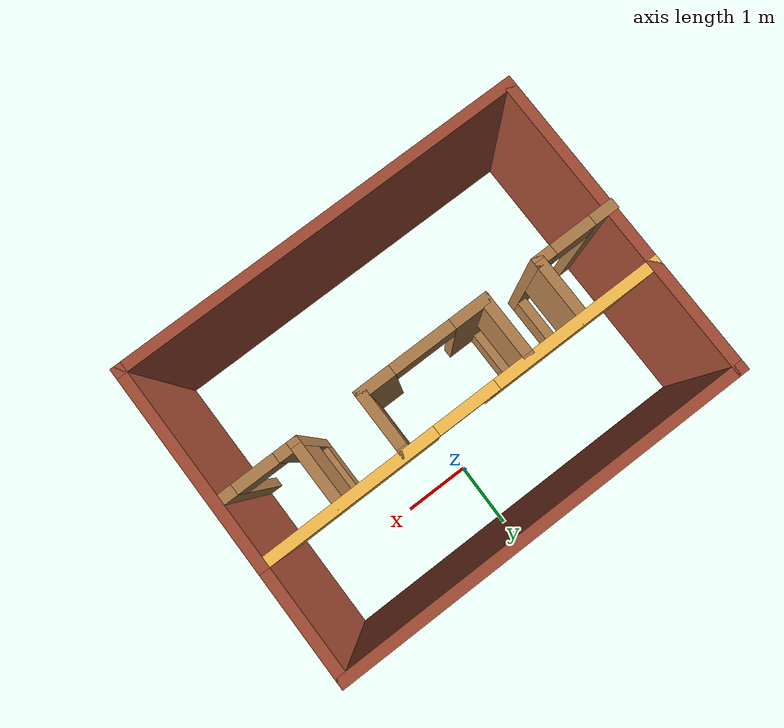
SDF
<?xml version='1.0'?>
<sdf version='1.6'>
  <model name='office'>
    <pose frame=''>-0.345 -1.265 0 0 -0 0</pose>
    <link name='Wall_0'>
      <pose frame=''>0.01 0.625 0 0 -0 0</pose>
      <visual name='Wall_0_Visual_0'>
        <pose frame=''>-1.76197 0 1.25 0 -0 0</pose>
        <geometry>
          <box>
            <size>2.47607 0.15 2.5</size>
          </box>
        </geometry>
        <material>
          <script>
            <uri>file://media/materials/scripts/gazebo.material</uri>
            <name>Gazebo/Grey</name>
          </script>
          <ambient>1 0.764706 0.305882 1</ambient>
        </material>
        <meta>
          <layer>0</layer>
        </meta>
      </visual>
      <collision name='Wall_0_Collision_0'>
        <geometry>
          <box>
            <size>2.47607 0.15 2.5</size>
          </box>
        </geometry>
        <pose frame=''>-1.76197 0 1.25 0 -0 0</pose>
      </collision>
      <visual name='Wall_0_Visual_1'>
        <pose frame=''>1.68803 0 1.25 0 -0 0</pose>
        <geometry>
          <box>
            <size>2.62393 0.15 2.5</size>
          </box>
        </geometry>
        <material>
          <script>
            <uri>file://media/materials/scripts/gazebo.material</uri>
            <name>Gazebo/Grey</name>
          </script>
          <ambient>1 0.764706 0.305882 1</ambient>
        </material>
        <meta>
          <layer>0</layer>
        </meta>
      </visual>
      <collision name='Wall_0_Collision_1'>
        <geometry>
          <box>
            <size>2.62393 0.15 2.5</size>
          </box>
        </geometry>
        <pose frame=''>1.68803 0 1.25 0 -0 0</pose>
      </collision>
      <visual name='Wall_0_Visual_2'>
        <pose frame=''>-0.073934 0 2.25 0 -0 0</pose>
        <geometry>
          <box>
            <size>0.9 0.15 0.5</size>
          </box>
        </geometry>
        <material>
          <script>
            <uri>file://media/materials/scripts/gazebo.material</uri>
            <name>Gazebo/Grey</name>
          </script>
          <ambient>1 0.764706 0.305882 1</ambient>
        </material>
        <meta>
          <layer>0</layer>
        </meta>
      </visual>
      <collision name='Wall_0_Collision_2'>
        <geometry>
          <box>
            <size>0.9 0.15 0.5</size>
          </box>
        </geometry>
        <pose frame=''>-0.073934 0 2.25 0 -0 0</pose>
      </collision>
    </link>
    <link name='Wall_1'>
      <collision name='Wall_1_Collision'>
        <geometry>
          <box>
            <size>3 0.15 2.5</size>
          </box>
        </geometry>
        <pose frame=''>0 0 1.25 0 -0 0</pose>
      </collision>
      <visual name='Wall_1_Visual'>
        <pose frame=''>0 0 1.25 0 -0 0</pose>
        <geometry>
          <box>
            <size>3 0.15 2.5</size>
          </box>
        </geometry>
        <material>
          <script>
            <uri>file://media/materials/scripts/gazebo.material</uri>
            <name>Gazebo/Bricks</name>
          </script>
          <ambient>1 1 1 1</ambient>
        </material>
        <meta>
          <layer>0</layer>
        </meta>
      </visual>
      <pose frame=''>2.935 -0.8 0 0 0 -1.5708</pose>
    </link>
    <link name='Wall_11'>
      <pose frame=''>0.825 0.16 0 0 0 -1.5708</pose>
      <visual name='Wall_11_Visual_0'>
        <pose frame=''>-0.433009 0 1.25 0 -0 0</pose>
        <geometry>
          <box>
            <size>0.133981 0.15 2.5</size>
          </box>
        </geometry>
        <material>
          <script>
            <uri>file://media/materials/scripts/gazebo.material</uri>
            <name>Gazebo/Wood</name>
          </script>
          <ambient>1 1 1 1</ambient>
        </material>
        <meta>
          <layer>0</layer>
        </meta>
      </visual>
      <collision name='Wall_11_Collision_0'>
        <geometry>
          <box>
            <size>0.133981 0.15 2.5</size>
          </box>
        </geometry>
        <pose frame=''>-0.433009 0 1.25 0 -0 0</pose>
      </collision>
      <visual name='Wall_11_Visual_1'>
        <pose frame=''>0.066991 0 0.25 0 -0 0</pose>
        <geometry>
          <box>
            <size>0.866019 0.15 0.5</size>
          </box>
        </geometry>
        <material>
          <script>
            <uri>file://media/materials/scripts/gazebo.material</uri>
            <name>Gazebo/Wood</name>
          </script>
          <ambient>1 1 1 1</ambient>
        </material>
        <meta>
          <layer>0</layer>
        </meta>
      </visual>
      <collision name='Wall_11_Collision_1'>
        <geometry>
          <box>
            <size>0.866019 0.15 0.5</size>
          </box>
        </geometry>
        <pose frame=''>0.066991 0 0.25 0 -0 0</pose>
      </collision>
      <visual name='Wall_11_Visual_2'>
        <pose frame=''>0.466991 0 1.5 0 -0 0</pose>
        <geometry>
          <box>
            <size>0.066019 0.15 2</size>
          </box>
        </geometry>
        <material>
          <script>
            <uri>file://media/materials/scripts/gazebo.material</uri>
            <name>Gazebo/Wood</name>
          </script>
          <ambient>1 1 1 1</ambient>
        </material>
        <meta>
          <layer>0</layer>
        </meta>
      </visual>
      <collision name='Wall_11_Collision_2'>
        <geometry>
          <box>
            <size>0.066019 0.15 2</size>
          </box>
        </geometry>
        <pose frame=''>0.466991 0 1.5 0 -0 0</pose>
      </collision>
      <visual name='Wall_11_Visual_3'>
        <pose frame=''>0.033981 0 1.9 0 -0 0</pose>
        <geometry>
          <box>
            <size>0.8 0.15 1.2</size>
          </box>
        </geometry>
        <material>
          <script>
            <uri>file://media/materials/scripts/gazebo.material</uri>
            <name>Gazebo/Wood</name>
          </script>
          <ambient>1 1 1 1</ambient>
        </material>
        <meta>
          <layer>0</layer>
        </meta>
      </visual>
      <collision name='Wall_11_Collision_3'>
        <geometry>
          <box>
            <size>0.8 0.15 1.2</size>
          </box>
        </geometry>
        <pose frame=''>0.033981 0 1.9 0 -0 0</pose>
      </collision>
    </link>
    <link name='Wall_12'>
      <pose frame=''>-0.1 -0.265 0 0 -0 3.14159</pose>
      <visual name='Wall_12_Visual_0'>
        <pose frame=''>-0.7325 0 1.25 0 -0 0</pose>
        <geometry>
          <box>
            <size>0.535 0.15 2.5</size>
          </box>
        </geometry>
        <material>
          <script>
            <uri>file://media/materials/scripts/gazebo.material</uri>
            <name>Gazebo/Wood</name>
          </script>
          <ambient>1 1 1 1</ambient>
        </material>
        <meta>
          <layer>0</layer>
        </meta>
      </visual>
      <collision name='Wall_12_Collision_0'>
        <geometry>
          <box>
            <size>0.535 0.15 2.5</size>
          </box>
        </geometry>
        <pose frame=''>-0.7325 0 1.25 0 -0 0</pose>
      </collision>
      <visual name='Wall_12_Visual_1'>
        <pose frame=''>0.7175 0 1.25 0 -0 0</pose>
        <geometry>
          <box>
            <size>0.565 0.15 2.5</size>
          </box>
        </geometry>
        <material>
          <script>
            <uri>file://media/materials/scripts/gazebo.material</uri>
            <name>Gazebo/Wood</name>
          </script>
          <ambient>1 1 1 1</ambient>
        </material>
        <meta>
          <layer>0</layer>
        </meta>
      </visual>
      <collision name='Wall_12_Collision_1'>
        <geometry>
          <box>
            <size>0.565 0.15 2.5</size>
          </box>
        </geometry>
        <pose frame=''>0.7175 0 1.25 0 -0 0</pose>
      </collision>
      <visual name='Wall_12_Visual_2'>
        <pose frame=''>-0.015 0 2.25 0 -0 0</pose>
        <geometry>
          <box>
            <size>0.9 0.15 0.5</size>
          </box>
        </geometry>
        <material>
          <script>
            <uri>file://media/materials/scripts/gazebo.material</uri>
            <name>Gazebo/Wood</name>
          </script>
          <ambient>1 1 1 1</ambient>
        </material>
        <meta>
          <layer>0</layer>
        </meta>
      </visual>
      <collision name='Wall_12_Collision_2'>
        <geometry>
          <box>
            <size>0.9 0.15 0.5</size>
          </box>
        </geometry>
        <pose frame=''>-0.015 0 2.25 0 -0 0</pose>
      </collision>
    </link>
    <link name='Wall_13'>
      <pose frame=''>-1.025 0.16 0 0 -0 1.5708</pose>
      <visual name='Wall_13_Visual_0'>
        <pose frame=''>-0.451782 0 1.25 0 -0 0</pose>
        <geometry>
          <box>
            <size>0.096436 0.15 2.5</size>
          </box>
        </geometry>
        <material>
          <script>
            <uri>file://media/materials/scripts/gazebo.material</uri>
            <name>Gazebo/Wood</name>
          </script>
          <ambient>1 1 1 1</ambient>
        </material>
        <meta>
          <layer>0</layer>
        </meta>
      </visual>
      <collision name='Wall_13_Collision_0'>
        <geometry>
          <box>
            <size>0.096436 0.15 2.5</size>
          </box>
        </geometry>
        <pose frame=''>-0.451782 0 1.25 0 -0 0</pose>
      </collision>
      <visual name='Wall_13_Visual_1'>
        <pose frame=''>0.048218 0 0.25 0 -0 0</pose>
        <geometry>
          <box>
            <size>0.903564 0.15 0.5</size>
          </box>
        </geometry>
        <material>
          <script>
            <uri>file://media/materials/scripts/gazebo.material</uri>
            <name>Gazebo/Wood</name>
          </script>
          <ambient>1 1 1 1</ambient>
        </material>
        <meta>
          <layer>0</layer>
        </meta>
      </visual>
      <collision name='Wall_13_Collision_1'>
        <geometry>
          <box>
            <size>0.903564 0.15 0.5</size>
          </box>
        </geometry>
        <pose frame=''>0.048218 0 0.25 0 -0 0</pose>
      </collision>
      <visual name='Wall_13_Visual_2'>
        <pose frame=''>0.448218 0 1.5 0 -0 0</pose>
        <geometry>
          <box>
            <size>0.103564 0.15 2</size>
          </box>
        </geometry>
        <material>
          <script>
            <uri>file://media/materials/scripts/gazebo.material</uri>
            <name>Gazebo/Wood</name>
          </script>
          <ambient>1 1 1 1</ambient>
        </material>
        <meta>
          <layer>0</layer>
        </meta>
      </visual>
      <collision name='Wall_13_Collision_2'>
        <geometry>
          <box>
            <size>0.103564 0.15 2</size>
          </box>
        </geometry>
        <pose frame=''>0.448218 0 1.5 0 -0 0</pose>
      </collision>
      <visual name='Wall_13_Visual_3'>
        <pose frame=''>-0.003564 0 1.9 0 -0 0</pose>
        <geometry>
          <box>
            <size>0.8 0.15 1.2</size>
          </box>
        </geometry>
        <material>
          <script>
            <uri>file://media/materials/scripts/gazebo.material</uri>
            <name>Gazebo/Wood</name>
          </script>
          <ambient>1 1 1 1</ambient>
        </material>
        <meta>
          <layer>0</layer>
        </meta>
      </visual>
      <collision name='Wall_13_Collision_3'>
        <geometry>
          <box>
            <size>0.8 0.15 1.2</size>
          </box>
        </geometry>
        <pose frame=''>-0.003564 0 1.9 0 -0 0</pose>
      </collision>
    </link>
    <link name='Wall_15'>
      <collision name='Wall_15_Collision'>
        <geometry>
          <box>
            <size>1.75 0.15 2.5</size>
          </box>
        </geometry>
        <pose frame=''>0 0 1.25 0 -0 0</pose>
      </collision>
      <visual name='Wall_15_Visual'>
        <pose frame=''>0 0 1.25 0 -0 0</pose>
        <geometry>
          <box>
            <size>1.75 0.15 2.5</size>
          </box>
        </geometry>
        <material>
          <script>
            <uri>file://media/materials/scripts/gazebo.material</uri>
            <name>Gazebo/Bricks</name>
          </script>
          <ambient>1 1 1 1</ambient>
        </material>
        <meta>
          <layer>0</layer>
        </meta>
      </visual>
      <pose frame=''>-2.915 1.425 0 0 -0 1.5708</pose>
    </link>
    <link name='Wall_16'>
      <collision name='Wall_16_Collision'>
        <geometry>
          <box>
            <size>6 0.15 2.5</size>
          </box>
        </geometry>
        <pose frame=''>0 0 1.25 0 -0 0</pose>
      </collision>
      <visual name='Wall_16_Visual'>
        <pose frame=''>0 0 1.25 0 -0 0</pose>
        <geometry>
          <box>
            <size>6 0.15 2.5</size>
          </box>
        </geometry>
        <material>
          <script>
            <uri>file://media/materials/scripts/gazebo.material</uri>
            <name>Gazebo/Bricks</name>
          </script>
          <ambient>1 1 1 1</ambient>
        </material>
        <meta>
          <layer>0</layer>
        </meta>
      </visual>
      <pose frame=''>0.01 2.225 0 0 -0 0</pose>
    </link>
    <link name='Wall_17'>
      <collision name='Wall_17_Collision'>
        <geometry>
          <box>
            <size>1.75 0.15 2.5</size>
          </box>
        </geometry>
        <pose frame=''>0 0 1.25 0 -0 0</pose>
      </collision>
      <visual name='Wall_17_Visual'>
        <pose frame=''>0 0 1.25 0 -0 0</pose>
        <geometry>
          <box>
            <size>1.75 0.15 2.5</size>
          </box>
        </geometry>
        <material>
          <script>
            <uri>file://media/materials/scripts/gazebo.material</uri>
            <name>Gazebo/Bricks</name>
          </script>
          <ambient>1 1 1 1</ambient>
        </material>
        <meta>
          <layer>0</layer>
        </meta>
      </visual>
      <pose frame=''>2.935 1.425 0 0 0 -1.5708</pose>
    </link>
    <link name='Wall_2'>
      <collision name='Wall_2_Collision'>
        <geometry>
          <box>
            <size>6 0.15 2.5</size>
          </box>
        </geometry>
        <pose frame=''>0 0 1.25 0 -0 0</pose>
      </collision>
      <visual name='Wall_2_Visual'>
        <pose frame=''>0 0 1.25 0 -0 0</pose>
        <geometry>
          <box>
            <size>6 0.15 2.5</size>
          </box>
        </geometry>
        <material>
          <script>
            <uri>file://media/materials/scripts/gazebo.material</uri>
            <name>Gazebo/Bricks</name>
          </script>
          <ambient>1 1 1 1</ambient>
        </material>
        <meta>
          <layer>0</layer>
        </meta>
      </visual>
      <pose frame=''>0.01 -2.225 0 0 -0 3.14159</pose>
    </link>
    <link name='Wall_3'>
      <collision name='Wall_3_Collision'>
        <geometry>
          <box>
            <size>3 0.15 2.5</size>
          </box>
        </geometry>
        <pose frame=''>0 0 1.25 0 -0 0</pose>
      </collision>
      <visual name='Wall_3_Visual'>
        <pose frame=''>0 0 1.25 0 -0 0</pose>
        <geometry>
          <box>
            <size>3 0.15 2.5</size>
          </box>
        </geometry>
        <material>
          <script>
            <uri>file://media/materials/scripts/gazebo.material</uri>
            <name>Gazebo/Bricks</name>
          </script>
          <ambient>1 1 1 1</ambient>
        </material>
        <meta>
          <layer>0</layer>
        </meta>
      </visual>
      <pose frame=''>-2.915 -0.8 0 0 -0 1.5708</pose>
    </link>
    <link name='Wall_5'>
      <pose frame=''>-1.835 0.18 0 0 0 -1.5708</pose>
      <visual name='Wall_5_Visual_0'>
        <pose frame=''>-0.438218 0 1.25 0 -0 0</pose>
        <geometry>
          <box>
            <size>0.123564 0.15 2.5</size>
          </box>
        </geometry>
        <material>
          <script>
            <uri>file://media/materials/scripts/gazebo.material</uri>
            <name>Gazebo/Wood</name>
          </script>
          <ambient>1 1 1 1</ambient>
        </material>
        <meta>
          <layer>0</layer>
        </meta>
      </visual>
      <collision name='Wall_5_Collision_0'>
        <geometry>
          <box>
            <size>0.123564 0.15 2.5</size>
          </box>
        </geometry>
        <pose frame=''>-0.438218 0 1.25 0 -0 0</pose>
      </collision>
      <visual name='Wall_5_Visual_1'>
        <pose frame=''>0.061782 0 0.25 0 -0 0</pose>
        <geometry>
          <box>
            <size>0.876436 0.15 0.5</size>
          </box>
        </geometry>
        <material>
          <script>
            <uri>file://media/materials/scripts/gazebo.material</uri>
            <name>Gazebo/Wood</name>
          </script>
          <ambient>1 1 1 1</ambient>
        </material>
        <meta>
          <layer>0</layer>
        </meta>
      </visual>
      <collision name='Wall_5_Collision_1'>
        <geometry>
          <box>
            <size>0.876436 0.15 0.5</size>
          </box>
        </geometry>
        <pose frame=''>0.061782 0 0.25 0 -0 0</pose>
      </collision>
      <visual name='Wall_5_Visual_2'>
        <pose frame=''>0.461782 0 1.5 0 -0 0</pose>
        <geometry>
          <box>
            <size>0.076436 0.15 2</size>
          </box>
        </geometry>
        <material>
          <script>
            <uri>file://media/materials/scripts/gazebo.material</uri>
            <name>Gazebo/Wood</name>
          </script>
          <ambient>1 1 1 1</ambient>
        </material>
        <meta>
          <layer>0</layer>
        </meta>
      </visual>
      <collision name='Wall_5_Collision_2'>
        <geometry>
          <box>
            <size>0.076436 0.15 2</size>
          </box>
        </geometry>
        <pose frame=''>0.461782 0 1.5 0 -0 0</pose>
      </collision>
      <visual name='Wall_5_Visual_3'>
        <pose frame=''>0.023564 0 1.9 0 -0 0</pose>
        <geometry>
          <box>
            <size>0.8 0.15 1.2</size>
          </box>
        </geometry>
        <material>
          <script>
            <uri>file://media/materials/scripts/gazebo.material</uri>
            <name>Gazebo/Wood</name>
          </script>
          <ambient>1 1 1 1</ambient>
        </material>
        <meta>
          <layer>0</layer>
        </meta>
      </visual>
      <collision name='Wall_5_Collision_3'>
        <geometry>
          <box>
            <size>0.8 0.15 1.2</size>
          </box>
        </geometry>
        <pose frame=''>0.023564 0 1.9 0 -0 0</pose>
      </collision>
    </link>
    <link name='Wall_6'>
      <pose frame=''>-2.385 -0.245 0 0 -0 3.14159</pose>
      <visual name='Wall_6_Visual_0'>
        <pose frame=''>-0.4775 0 1.25 0 -0 0</pose>
        <geometry>
          <box>
            <size>0.295 0.15 2.5</size>
          </box>
        </geometry>
        <material>
          <script>
            <uri>file://media/materials/scripts/gazebo.material</uri>
            <name>Gazebo/Wood</name>
          </script>
          <ambient>1 1 1 1</ambient>
        </material>
        <meta>
          <layer>0</layer>
        </meta>
      </visual>
      <collision name='Wall_6_Collision_0'>
        <geometry>
          <box>
            <size>0.295 0.15 2.5</size>
          </box>
        </geometry>
        <pose frame=''>-0.4775 0 1.25 0 -0 0</pose>
      </collision>
      <visual name='Wall_6_Visual_1'>
        <pose frame=''>0.4475 0 1.25 0 -0 0</pose>
        <geometry>
          <box>
            <size>0.355 0.15 2.5</size>
          </box>
        </geometry>
        <material>
          <script>
            <uri>file://media/materials/scripts/gazebo.material</uri>
            <name>Gazebo/Wood</name>
          </script>
          <ambient>1 1 1 1</ambient>
        </material>
        <meta>
          <layer>0</layer>
        </meta>
      </visual>
      <collision name='Wall_6_Collision_1'>
        <geometry>
          <box>
            <size>0.355 0.15 2.5</size>
          </box>
        </geometry>
        <pose frame=''>0.4475 0 1.25 0 -0 0</pose>
      </collision>
      <visual name='Wall_6_Visual_2'>
        <pose frame=''>-0.03 0 2.25 0 -0 0</pose>
        <geometry>
          <box>
            <size>0.6 0.15 0.5</size>
          </box>
        </geometry>
        <material>
          <script>
            <uri>file://media/materials/scripts/gazebo.material</uri>
            <name>Gazebo/Wood</name>
          </script>
          <ambient>1 1 1 1</ambient>
        </material>
        <meta>
          <layer>0</layer>
        </meta>
      </visual>
      <collision name='Wall_6_Collision_2'>
        <geometry>
          <box>
            <size>0.6 0.15 0.5</size>
          </box>
        </geometry>
        <pose frame=''>-0.03 0 2.25 0 -0 0</pose>
      </collision>
    </link>
    <link name='Wall_8'>
      <pose frame=''>2.345 -0.265 0 0 -0 3.14159</pose>
      <visual name='Wall_8_Visual_0'>
        <pose frame=''>-0.4725 0 1.25 0 -0 0</pose>
        <geometry>
          <box>
            <size>0.305 0.15 2.5</size>
          </box>
        </geometry>
        <material>
          <script>
            <uri>file://media/materials/scripts/gazebo.material</uri>
            <name>Gazebo/Wood</name>
          </script>
          <ambient>1 1 1 1</ambient>
        </material>
        <meta>
          <layer>0</layer>
        </meta>
      </visual>
      <collision name='Wall_8_Collision_0'>
        <geometry>
          <box>
            <size>0.305 0.15 2.5</size>
          </box>
        </geometry>
        <pose frame=''>-0.4725 0 1.25 0 -0 0</pose>
      </collision>
      <visual name='Wall_8_Visual_1'>
        <pose frame=''>0.4525 0 1.25 0 -0 0</pose>
        <geometry>
          <box>
            <size>0.345 0.15 2.5</size>
          </box>
        </geometry>
        <material>
          <script>
            <uri>file://media/materials/scripts/gazebo.material</uri>
            <name>Gazebo/Wood</name>
          </script>
          <ambient>1 1 1 1</ambient>
        </material>
        <meta>
          <layer>0</layer>
        </meta>
      </visual>
      <collision name='Wall_8_Collision_1'>
        <geometry>
          <box>
            <size>0.345 0.15 2.5</size>
          </box>
        </geometry>
        <pose frame=''>0.4525 0 1.25 0 -0 0</pose>
      </collision>
      <visual name='Wall_8_Visual_2'>
        <pose frame=''>-0.02 0 2.25 0 -0 0</pose>
        <geometry>
          <box>
            <size>0.6 0.15 0.5</size>
          </box>
        </geometry>
        <material>
          <script>
            <uri>file://media/materials/scripts/gazebo.material</uri>
            <name>Gazebo/Wood</name>
          </script>
          <ambient>1 1 1 1</ambient>
        </material>
        <meta>
          <layer>0</layer>
        </meta>
      </visual>
      <collision name='Wall_8_Collision_2'>
        <geometry>
          <box>
            <size>0.6 0.15 0.5</size>
          </box>
        </geometry>
        <pose frame=''>-0.02 0 2.25 0 -0 0</pose>
      </collision>
    </link>
    <link name='Wall_9'>
      <pose frame=''>1.795 0.16 0 0 -0 1.5708</pose>
      <visual name='Wall_9_Visual_0'>
        <pose frame=''>-0.451782 0 1.25 0 -0 0</pose>
        <geometry>
          <box>
            <size>0.096436 0.15 2.5</size>
          </box>
        </geometry>
        <material>
          <script>
            <uri>file://media/materials/scripts/gazebo.material</uri>
            <name>Gazebo/Wood</name>
          </script>
          <ambient>1 1 1 1</ambient>
        </material>
        <meta>
          <layer>0</layer>
        </meta>
      </visual>
      <collision name='Wall_9_Collision_0'>
        <geometry>
          <box>
            <size>0.096436 0.15 2.5</size>
          </box>
        </geometry>
        <pose frame=''>-0.451782 0 1.25 0 -0 0</pose>
      </collision>
      <visual name='Wall_9_Visual_1'>
        <pose frame=''>0.048218 0 0.25 0 -0 0</pose>
        <geometry>
          <box>
            <size>0.903564 0.15 0.5</size>
          </box>
        </geometry>
        <material>
          <script>
            <uri>file://media/materials/scripts/gazebo.material</uri>
            <name>Gazebo/Wood</name>
          </script>
          <ambient>1 1 1 1</ambient>
        </material>
        <meta>
          <layer>0</layer>
        </meta>
      </visual>
      <collision name='Wall_9_Collision_1'>
        <geometry>
          <box>
            <size>0.903564 0.15 0.5</size>
          </box>
        </geometry>
        <pose frame=''>0.048218 0 0.25 0 -0 0</pose>
      </collision>
      <visual name='Wall_9_Visual_2'>
        <pose frame=''>0.448218 0 1.5 0 -0 0</pose>
        <geometry>
          <box>
            <size>0.103564 0.15 2</size>
          </box>
        </geometry>
        <material>
          <script>
            <uri>file://media/materials/scripts/gazebo.material</uri>
            <name>Gazebo/Wood</name>
          </script>
          <ambient>1 1 1 1</ambient>
        </material>
        <meta>
          <layer>0</layer>
        </meta>
      </visual>
      <collision name='Wall_9_Collision_2'>
        <geometry>
          <box>
            <size>0.103564 0.15 2</size>
          </box>
        </geometry>
        <pose frame=''>0.448218 0 1.5 0 -0 0</pose>
      </collision>
      <visual name='Wall_9_Visual_3'>
        <pose frame=''>-0.003564 0 1.9 0 -0 0</pose>
        <geometry>
          <box>
            <size>0.8 0.15 1.2</size>
          </box>
        </geometry>
        <material>
          <script>
            <uri>file://media/materials/scripts/gazebo.material</uri>
            <name>Gazebo/Wood</name>
          </script>
          <ambient>1 1 1 1</ambient>
        </material>
        <meta>
          <layer>0</layer>
        </meta>
      </visual>
      <collision name='Wall_9_Collision_3'>
        <geometry>
          <box>
            <size>0.8 0.15 1.2</size>
          </box>
        </geometry>
        <pose frame=''>-0.003564 0 1.9 0 -0 0</pose>
      </collision>
    </link>
    <static>1</static>
  </model>
</sdf>
